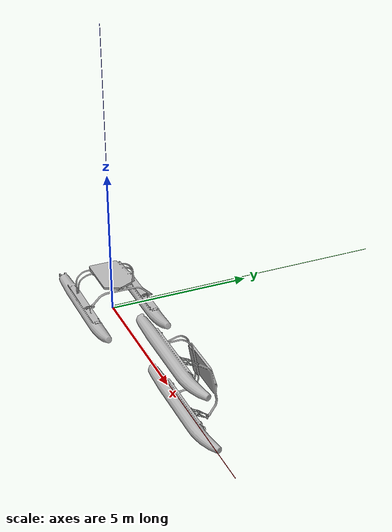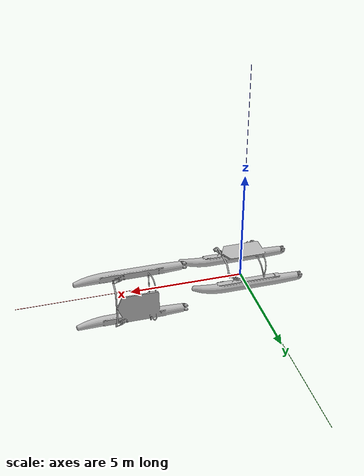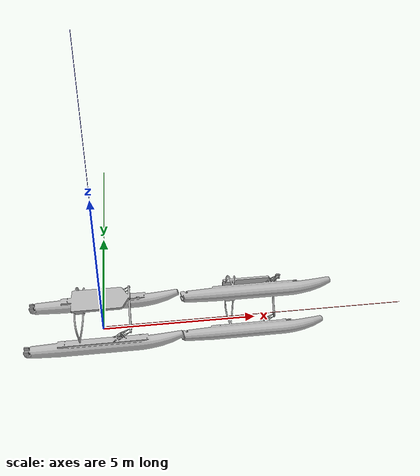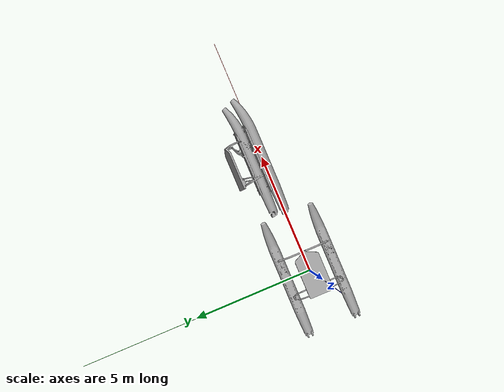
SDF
<?xml version="1.0" ?>
<sdf version="1.6">
  <world name="waves">
    <plugin filename="gz-sim-physics-system"
            name="gz::sim::systems::Physics">
    </plugin>
    <plugin filename="gz-sim-sensors-system"
            name="gz::sim::systems::Sensors">
      <render_engine>ogre2</render_engine>
      <background_color>0.8 0.8 0.8</background_color>
    </plugin>
    <plugin filename="gz-sim-scene-broadcaster-system"
            name="gz::sim::systems::SceneBroadcaster">
    </plugin>
    <plugin filename="gz-sim-user-commands-system"
            name="gz::sim::systems::UserCommands">
    </plugin>
    <plugin filename="gz-sim-imu-system"
            name="gz::sim::systems::Imu">
    </plugin>
    <plugin
      filename="gz-sim-buoyancy-system"
      name="gz::sim::systems::Buoyancy">
      <graded_buoyancy>
        <default_density>1000</default_density>
        <density_change>
          <above_depth>0</above_depth>
          <density>1</density>
        </density_change>
      </graded_buoyancy>

      <!-- enable by link name -->
      <enable>wam-v::base_link</enable>
    </plugin>

    <scene>
      <ambient>1.0 1.0 1.0</ambient>
      <background>0.8 0.8 0.8</background>
      <sky></sky>
    </scene>

    <light type="directional" name="sun">
      <cast_shadows>true</cast_shadows>
      <pose>0 0 10 0 0 0</pose>
      <diffuse>0.8 0.8 0.8 1</diffuse>
      <specular>0.6 0.6 0.6 1</specular>
      <direction>-0.5 0.1 -0.9</direction>
    </light>

    <include>
      <pose>0 0 0 0 0 0</pose>
      <uri>/home/graham/gz_ws/src/asv_wave_sim/gz-waves-models/world_models/waves/model.sdf</uri>
    </include>

    <!-- ENU axes -->
    <model name="axes">
      <static>1</static>
      <link name="link">
        <visual name="r">
          <cast_shadows>0</cast_shadows>
          <pose>5 0 0.1 0 0 0</pose>
          <geometry>
            <box>
              <size>10 0.01 0.01</size>
            </box>
          </geometry>
          <material>
            <ambient>1 0 0 1</ambient>
            <diffuse>1 0 0 1</diffuse>
            <emissive>1 0 0 1</emissive>
            <specular>0.5 0.5 0.5 1</specular>
          </material>
        </visual>
        <visual name="g">
          <cast_shadows>0</cast_shadows>
          <pose>0 5 0.1 0 0 0</pose>
          <geometry>
            <box>
              <size>0.01 10 0.01</size>
            </box>
          </geometry>
          <material>
            <ambient>0 1 0 1</ambient>
            <diffuse>0 1 0 1</diffuse>
            <emissive>0 1 0 1</emissive>
            <specular>0.5 0.5 0.5 1</specular>
          </material>
        </visual>
        <visual name="b">
          <cast_shadows>0</cast_shadows>
          <pose>0 0 5.1 0 0 0</pose>
          <geometry>
            <box>
              <size>0.01 0.01 10</size>
            </box>
          </geometry>
          <material>
            <ambient>0 0 1 1</ambient>
            <diffuse>0 0 1 1</diffuse>
            <emissive>0 0 1 1</emissive>
            <specular>0.5 0.5 0.5 1</specular>
          </material>
        </visual>
      </link>
    </model>

    <include>
      <pose>5 0 0 -1.4 0 0</pose>
      <uri>/home/graham/gz_ws/src/asv_wave_sim/gz-waves-models/models/wam-v/model.sdf</uri>
    </include>

  </world>
</sdf>

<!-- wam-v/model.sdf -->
<sdf version='1.6'>

  <model name='wam-v'>
    <pose>0 0 0 0 0 0</pose>
    <static>false</static>

    <plugin name="usv_dynamics_wam-v" filename="libusv_gazebo_dynamics_plugin.so">
        <bodyName>base_link</bodyName>
        <!-- Must be same as the ocean model!-->
        <waterLevel>0</waterLevel>
        <waterDensity>997.8</waterDensity>
        <!-- Added mass -->
        <xDotU>0.0</xDotU>
        <yDotV>0.0</yDotV>
        <nDotR>0.0</nDotR>
        <!-- Linear and quadratic drag -->
        <xU>51.3</xU>
        <xUU>72.4</xUU>
        <yV>40.0</yV>
        <yVV>0.0</yVV>
        <zW>500.0</zW>
        <kP>50.0</kP>
        <mQ>50.0</mQ>
        <nR>400.0</nR>
        <nRR>0.0</nRR>
        <!-- General dimensions -->
        <hullRadius>0.213</hullRadius>
            <boatWidth>2.4</boatWidth>
            <boatLength>4.9</boatLength>
        <!-- Length discretization, AKA, "N" -->
        <length_n>2</length_n>

        <!-- Wave model -->
        <wave_model>ocean_waves</wave_model>
    </plugin>
    <link name="base_link">
      <visual name="base_visual">
        <geometry>
          <mesh>
            <uri>model://wam-v/meshes/WAM-V-Base.dae</uri>
          </mesh>
        </geometry>
      </visual>
      <collision name="base_collision">
        <geometry>
          <mesh>
            <uri>model://wam-v/meshes/wam-v-base_collision_406.stl</uri>
          </mesh>
        </geometry>
      </collision>
      <inertial>
        <pose>0 0 0 0 0 0</pose>
        <mass>180</mass>
        <inertia>
          <ixx>120</ixx>
          <ixy>0</ixy>
          <iyy>393</iyy>
          <iyz>0</iyz>
          <izz>446</izz>
        </inertia>
      </inertial>
    </link>
  </model>
</sdf>
